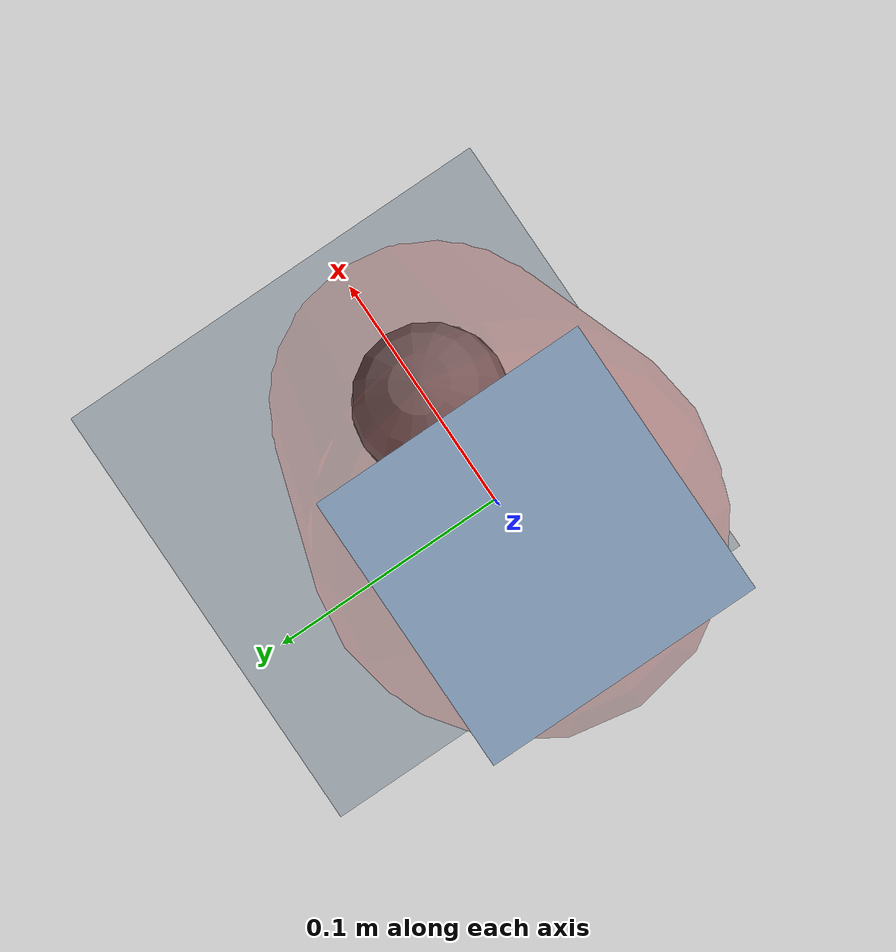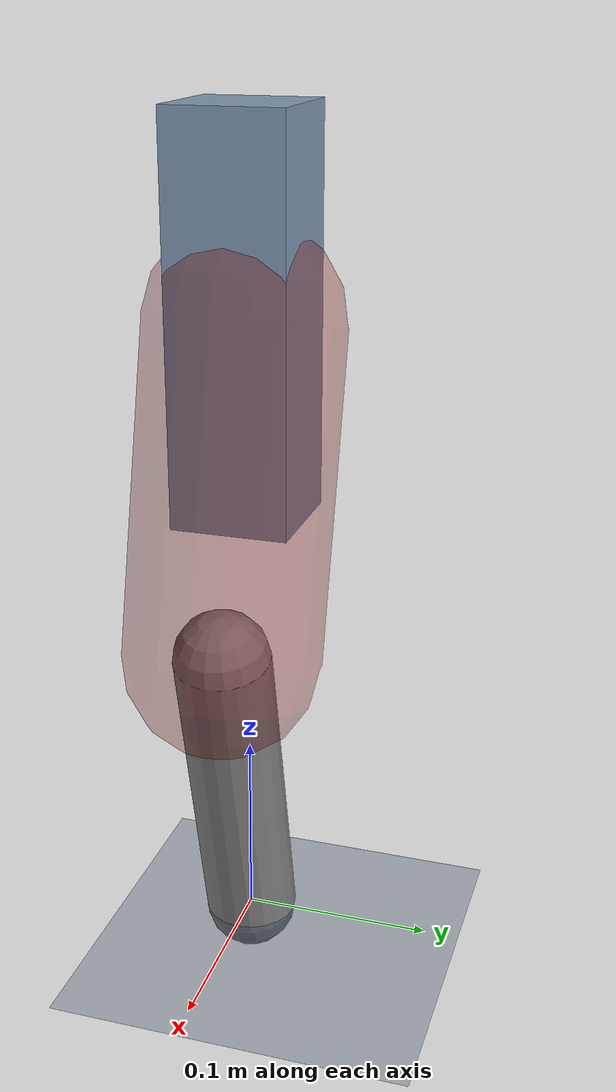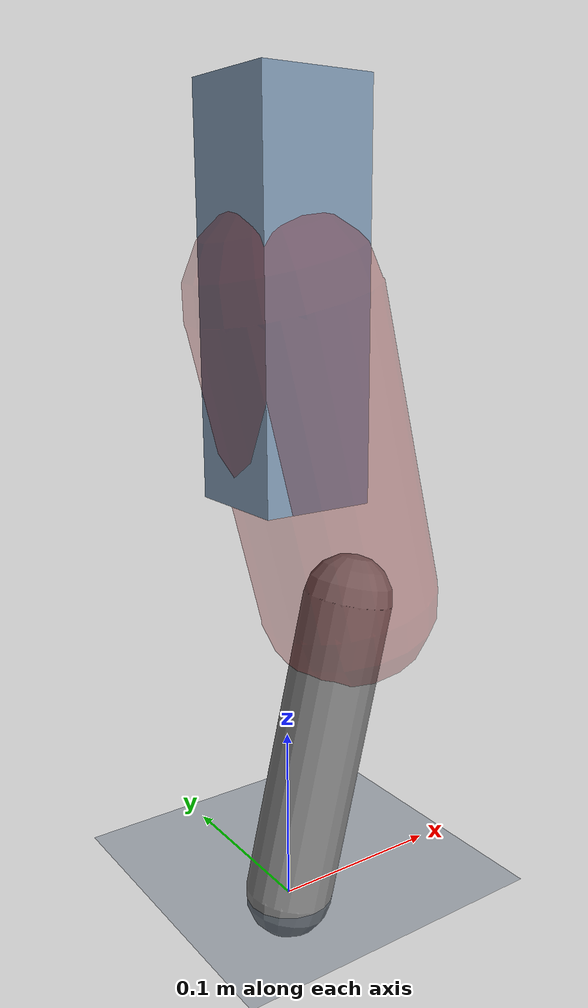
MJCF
<mujoco model="Hopper2D">
	<compiler inertiafromgeom="true" angle="radian" />
	<option timestep="0.001" integrator="implicit" cone="elliptic" solver="Newton" tolerance="1e-10" />

	<default>
		<geom contype="1" conaffinity="1" condim="3" friction="2 0.005 0.0001" solref="0.005 1" />
		<joint limited="true" damping="0.1" />
	</default>

	<asset>
		<texture name="skybox" type="skybox" builtin="gradient" rgb1=".4 .6 .8" rgb2="0 0 0" width="800" height="800" />
		<texture name="grid" type="2d" builtin="checker" rgb1=".1 .2 .3" rgb2=".2 .3 .4" width="300" height="300" mark="edge" markrgb=".2 .3 .4" />
		<material name="ground" texture="grid" texrepeat="1 1" texuniform="true" reflectance="0.1" />
		<material name="leg" rgba="0.5 0.6 0.7 1" />
	</asset>

	<worldbody>

		<geom name="floor" type="plane" size="5 5 0.25" material="ground" />

		<light directional="false" diffuse="0.8 0.8 0.8" specular="0.3 0.3 0.3" pos="0 0 2" dir="0 0 -1" />
		<light mode="targetbodycom" target="base" directional="false" diffuse="0.8 0.8 0.8" specular="0.3 0.3 0.3" pos="0 0 2" dir="0 0 -1" />

		<camera name="fixed" pos="0 -2 1" xyaxes="1 0 0 0 0 1" />
		<camera name="tracking" mode="trackcom" pos="0 -3 1" />

		<body name="root" pos="0 0 0.3324912614847858">
			<joint name="slide_x" type="slide" axis="1 0 0" range="-100 100" />
			<joint name="slide_z" type="slide" axis="0 0 1" range="0 10" />

			<body name="base" pos="0 0 0">
				<geom name="torso" type="box" size="0.03 0.03 0.1" mass="3.148" material="leg" />

				<body name="link1" pos="0 0 0" euler="0 1.3214768697392412 0">
					<joint type="hinge" axis="0 -1 0" pos="0 0 0" name="hinge1" limited="true" range="-3.14 3.14" stiffness="0" damping="0.1" />
					<geom name="thigh" type="capsule" fromto="0 0 0 0.16641218658142917 0 0" size="0.05" rgba="0.5 0 0 0.3" mass="0.64768924779543" />

					<body name="link2" pos="0.16641218658142917 0 0" euler="0 0.4846845575494111 0">
						<joint type="hinge" axis="0 -1 0" pos="0 0 0" name="hinge2" limited="true" range="-3.14 3.14" stiffness="0" damping="0.1" />
						<geom name="shank" type="capsule" fromto="0 0 0 0.17607907490335664 0 0" size="0.025" mass="0.3805632599226853" />

					</body>
				</body>
			</body>
		</body>
	</worldbody>

	<actuator>
		<motor name="torque1" joint="hinge1" ctrlrange="-146.73734217565143 146.73734217565143" ctrllimited="true" gear="1" />
		<motor name="torque2" joint="hinge2" ctrlrange="-48.05494860917775 48.05494860917775" ctrllimited="true" gear="1" />
	</actuator>
</mujoco>
